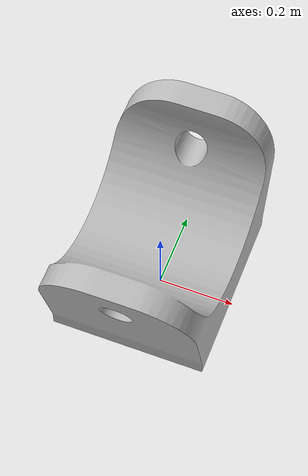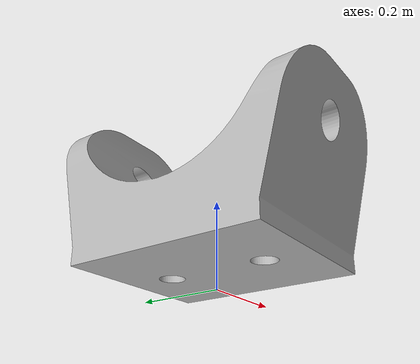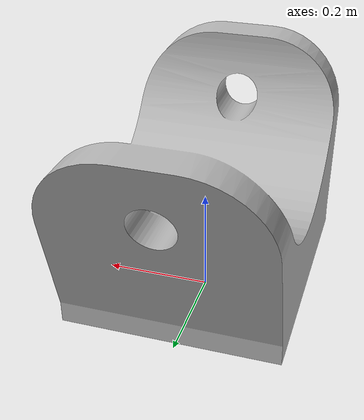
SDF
<?xml version="1.0" ?>
<sdf version="1.5">
  <model name="hokuyo">
    <pose>0 0 0.035 0 0 0</pose>
    <link name="link">
      <inertial>
        <mass>0.1</mass>
      </inertial>
      <visual name="visual">
        <geometry>
          <mesh>
            <uri>model://hokuyo/meshes/LandingGear.dae</uri>
          </mesh>
        </geometry>
      </visual>
      <collision name="collision-base">
        <pose>0 0 -0.0145 0 0 0</pose>
        <geometry>
          <box>
            <size>0.05 0.05 0.041</size>
          </box>
        </geometry>
      </collision>
      <collision name="collision-top">
        <pose>0 0 0.0205 0 0 0</pose>
        <geometry>
          <cylinder>
            <radius>0.021</radius>
            <length>0.029</length>
          </cylinder>
        </geometry>
      </collision>
      <sensor name="laser" type="ray">
        <pose>0.01 0 0.0175 0 -0 0</pose>
        <ray>
          <scan>
            <horizontal>
              <samples>640</samples>
              <resolution>1</resolution>
              <min_angle>-2.26889</min_angle>
              <max_angle>2.268899</max_angle>
            </horizontal>
          </scan>
          <range>
            <min>0.08</min>
            <max>10</max>
            <resolution>0.01</resolution>
          </range>
        </ray>
        <plugin name="laser" filename="libRayPlugin.so" />
        <always_on>1</always_on>
        <update_rate>30</update_rate>
        <visualize>true</visualize>
      </sensor>
    </link>
  </model>
</sdf>
